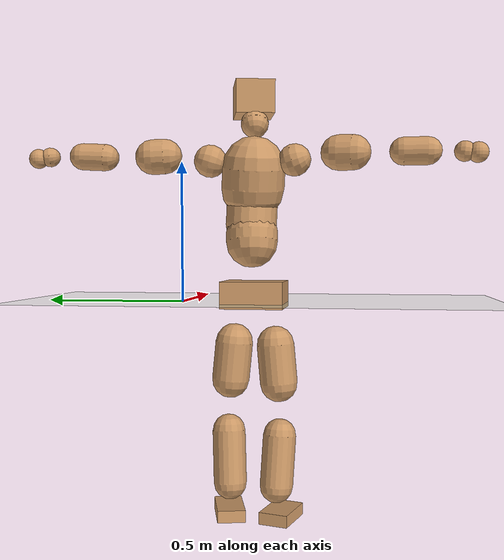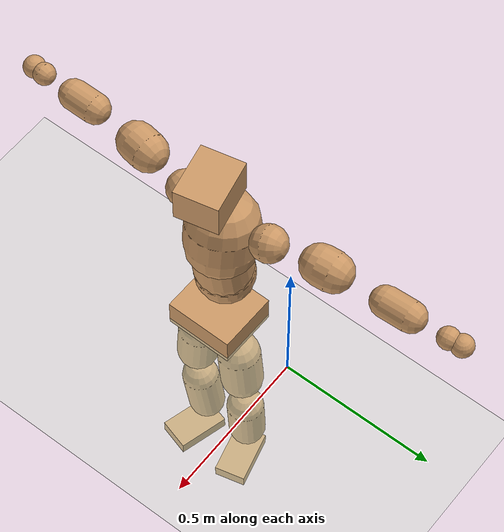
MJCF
<mujoco model="humanoid">
  <compiler coordinate="local" angle="radian"/>
  <default>
    <joint damping="0.0" armature="0.01" stiffness="0.0" limited="true"/>
    <geom conaffinity="1" condim="3" contype="7" margin="0.001" rgba="0.8 0.6 .4 1"/>
  </default>
  <asset>
    <texture type="skybox" builtin="gradient" rgb1=".4 .5 .6" rgb2="0 0 0" width="100" height="100"/>
    <texture builtin="flat" height="1278" mark="cross" markrgb="1 1 1" name="texgeom" random="0.01" rgb1="0.8 0.6 0.4" rgb2="0.8 0.6 0.4" type="cube" width="127"/>
    <texture builtin="checker" height="100" name="texplane" rgb1="0 0 0" rgb2="0.8 0.8 0.8" type="2d" width="100"/>
    <material name="MatPlane" reflectance="0.5" shininess="1" specular="1" texrepeat="60 60" texture="texplane"/>
    <material name="geom" texture="texgeom" texuniform="true"/>
  </asset>
  <worldbody>
    <light cutoff="100" diffuse="1 1 1" dir="-0 0 -1.3" directional="true" exponent="1" pos="0 0 1.3" specular=".1 .1 .1"/>
    <geom conaffinity="1" condim="3" name="floor" pos="0 0 0" rgba="0.8 0.9 0.8 1" size="100 100 .2" type="plane" material="MatPlane"/>
    <body name="Pelvis" pos="-0.0028 -0.2642 0.0362">
      <freejoint name="Pelvis"/>
      <geom type="box" contype="1" conaffinity="1" density="5359.374216" pos="-0.0113 0.0001 -0.0078" size="0.0967 0.1096 0.0474" quat="1.0000 0.0000 0.0000 -0.0064" name="Pelvis"/>
      <body name="L_Hip" pos="-0.0142 0.0633 -0.0821">
        <joint name="L_Hip_x" type="hinge" pos="0 0 0" axis="1 0 0" stiffness="1600" damping="160" armature="0.02" range="-180.0000 180.0000"/>
        <joint name="L_Hip_y" type="hinge" pos="0 0 0" axis="0 1 0" stiffness="1600" damping="160" armature="0.02" range="-180.0000 180.0000"/>
        <joint name="L_Hip_z" type="hinge" pos="0 0 0" axis="0 0 1" stiffness="1600" damping="160" armature="0.02" range="-180.0000 180.0000"/>
        <geom type="capsule" contype="1" conaffinity="1" density="2040.816327" size="0.0663" fromto="0.0005 0.0091 -0.0958 0.0012 0.0220 -0.2311" name="L_Hip"/>
        <body name="L_Knee" pos="0.0017 0.0311 -0.3269">
          <joint name="L_Knee_x" type="hinge" pos="0 0 0" axis="1 0 0" stiffness="1600" damping="160" armature="0.02" range="-180.0000 180.0000"/>
          <joint name="L_Knee_y" type="hinge" pos="0 0 0" axis="0 1 0" stiffness="1600" damping="160" armature="0.02" range="-180.0000 180.0000"/>
          <joint name="L_Knee_z" type="hinge" pos="0 0 0" axis="0 0 1" stiffness="1600" damping="160" armature="0.02" range="-180.0000 180.0000"/>
          <geom type="capsule" contype="1" conaffinity="1" density="1234.567901" size="0.0586" fromto="-0.0099 -0.0038 -0.0879 -0.0308 -0.0118 -0.2730" name="L_Knee"/>
          <body name="L_Ankle" pos="-0.0407 -0.0156 -0.361">
            <joint name="L_Ankle_x" type="hinge" pos="0 0 0" axis="1 0 0" stiffness="1600" damping="160" armature="0.02" range="-180.0000 180.0000"/>
            <joint name="L_Ankle_y" type="hinge" pos="0 0 0" axis="0 1 0" stiffness="1600" damping="160" armature="0.02" range="-180.0000 180.0000"/>
            <joint name="L_Ankle_z" type="hinge" pos="0 0 0" axis="0 0 1" stiffness="1600" damping="160" armature="0.02" range="-180.0000 180.0000"/>
            <geom type="box" contype="1" conaffinity="1" density="1000.000035" pos="0.0579 0.0142 -0.0265" size="0.0863 0.05 0.0216" quat="0.9928 0.0000 0.0000 0.1199" name="L_Ankle"/>
            <body name="L_Toe" pos="0.1157 0.0284 -0.0531">
              <joint name="L_Toe_x" type="hinge" pos="0 0 0" axis="1 0 0" stiffness="1000" damping="100" armature="0.02" range="-180.0000 180.0000"/>
              <joint name="L_Toe_y" type="hinge" pos="0 0 0" axis="0 1 0" stiffness="1000" damping="100" armature="0.02" range="-180.0000 180.0000"/>
              <joint name="L_Toe_z" type="hinge" pos="0 0 0" axis="0 0 1" stiffness="1000" damping="100" armature="0.02" range="-180.0000 180.0000"/>
              <geom type="box" contype="1" conaffinity="1" density="8379022.669763" pos="0.0000 0.0000 0.0264" size="0.001 0.0025 0.0011" quat="0.9920 0.0000 0.0000 0.1259" name="L_Toe"/>
            </body>
          </body>
        </body>
      </body>
      <body name="R_Hip" pos="-0.0088 -0.0665 -0.0896">
        <joint name="R_Hip_x" type="hinge" pos="0 0 0" axis="1 0 0" stiffness="1600" damping="160" armature="0.02" range="-180.0000 180.0000"/>
        <joint name="R_Hip_y" type="hinge" pos="0 0 0" axis="0 1 0" stiffness="1600" damping="160" armature="0.02" range="-180.0000 180.0000"/>
        <joint name="R_Hip_z" type="hinge" pos="0 0 0" axis="0 0 1" stiffness="1600" damping="160" armature="0.02" range="-180.0000 180.0000"/>
        <geom type="capsule" contype="1" conaffinity="1" density="2040.816327" size="0.0662" fromto="-0.0025 -0.0088 -0.0957 -0.0060 -0.0216 -0.2343" name="R_Hip"/>
        <body name="R_Knee" pos="-0.0084 -0.0304 -0.33">
          <joint name="R_Knee_x" type="hinge" pos="0 0 0" axis="1 0 0" stiffness="1600" damping="160" armature="0.02" range="-180.0000 180.0000"/>
          <joint name="R_Knee_y" type="hinge" pos="0 0 0" axis="0 1 0" stiffness="1600" damping="160" armature="0.02" range="-180.0000 180.0000"/>
          <joint name="R_Knee_z" type="hinge" pos="0 0 0" axis="0 0 1" stiffness="1600" damping="160" armature="0.02" range="-180.0000 180.0000"/>
          <geom type="capsule" contype="1" conaffinity="1" density="1234.567901" size="0.0584" fromto="-0.0091 0.0044 -0.0879 -0.0279 0.0135 -0.2684" name="R_Knee"/>
          <body name="R_Ankle" pos="-0.037 0.0179 -0.3562">
            <joint name="R_Ankle_x" type="hinge" pos="0 0 0" axis="1 0 0" stiffness="1600" damping="160" armature="0.02" range="-180.0000 180.0000"/>
            <joint name="R_Ankle_y" type="hinge" pos="0 0 0" axis="0 1 0" stiffness="1600" damping="160" armature="0.02" range="-180.0000 180.0000"/>
            <joint name="R_Ankle_z" type="hinge" pos="0 0 0" axis="0 0 1" stiffness="1600" damping="160" armature="0.02" range="-180.0000 180.0000"/>
            <geom type="box" contype="1" conaffinity="1" density="1000.000013" pos="0.0607 -0.0172 -0.0275" size="0.0837 0.0528 0.0216" quat="0.9905 0.0000 0.0000 -0.1372" name="R_Ankle"/>
            <body name="R_Toe" pos="0.1214 -0.0343 -0.0549">
              <joint name="R_Toe_x" type="hinge" pos="0 0 0" axis="1 0 0" stiffness="1000" damping="100" armature="0.02" range="-180.0000 180.0000"/>
              <joint name="R_Toe_y" type="hinge" pos="0 0 0" axis="0 1 0" stiffness="1000" damping="100" armature="0.02" range="-180.0000 180.0000"/>
              <joint name="R_Toe_z" type="hinge" pos="0 0 0" axis="0 0 1" stiffness="1000" damping="100" armature="0.02" range="-180.0000 180.0000"/>
              <geom type="box" contype="1" conaffinity="1" density="7558982.502113" pos="0.0000 0.0000 0.0281" size="0.0012 0.0026 0.0011" quat="0.9918 0.0000 0.0000 -0.1277" name="R_Toe"/>
            </body>
          </body>
        </body>
      </body>
      <body name="Torso" pos="-0.0451 0.0041 0.1247">
        <joint name="Torso_x" type="hinge" pos="0 0 0" axis="1 0 0" stiffness="2000" damping="200" armature="0.02" range="-180.0000 180.0000"/>
        <joint name="Torso_y" type="hinge" pos="0 0 0" axis="0 1 0" stiffness="2000" damping="200" armature="0.02" range="-180.0000 180.0000"/>
        <joint name="Torso_z" type="hinge" pos="0 0 0" axis="0 0 1" stiffness="2000" damping="200" armature="0.02" range="-180.0000 180.0000"/>
        <geom type="capsule" contype="1" conaffinity="1" density="2040.816327" size="0.0906" fromto="0.0159 0.0034 0.0891 0.0096 0.0020 0.0537" name="Torso"/>
        <body name="Spine" pos="0.0255 0.0054 0.1429">
          <joint name="Spine_x" type="hinge" pos="0 0 0" axis="1 0 0" stiffness="2000" damping="200" armature="0.02" range="-180.0000 180.0000"/>
          <joint name="Spine_y" type="hinge" pos="0 0 0" axis="0 1 0" stiffness="2000" damping="200" armature="0.02" range="-180.0000 180.0000"/>
          <joint name="Spine_z" type="hinge" pos="0 0 0" axis="0 0 1" stiffness="2000" damping="200" armature="0.02" range="-180.0000 180.0000"/>
          <geom type="capsule" contype="1" conaffinity="1" density="2040.816327" size="0.0895" fromto="0.0099 -0.0030 0.0889 -0.0034 0.0010 -0.0305" name="Spine"/>
          <body name="Chest" pos="0.0065 -0.002 0.0584">
            <joint name="Chest_x" type="hinge" pos="0 0 0" axis="1 0 0" stiffness="2000" damping="200" armature="0.02" range="-180.0000 180.0000"/>
            <joint name="Chest_y" type="hinge" pos="0 0 0" axis="0 1 0" stiffness="2000" damping="200" armature="0.02" range="-180.0000 180.0000"/>
            <joint name="Chest_z" type="hinge" pos="0 0 0" axis="0 0 1" stiffness="2000" damping="200" armature="0.02" range="-180.0000 180.0000"/>
            <geom type="capsule" contype="1" conaffinity="1" density="2040.816327" size="0.1107" fromto="-0.0207 -0.0068 0.1085 -0.0074 -0.0024 0.0388" name="Chest"/>
            <body name="Neck" pos="-0.0396 -0.0148 0.2166">
              <joint name="Neck_x" type="hinge" pos="0 0 0" axis="1 0 0" stiffness="1000" damping="100" armature="0.02" range="-180.0000 180.0000"/>
              <joint name="Neck_y" type="hinge" pos="0 0 0" axis="0 1 0" stiffness="1000" damping="100" armature="0.02" range="-180.0000 180.0000"/>
              <joint name="Neck_z" type="hinge" pos="0 0 0" axis="0 0 1" stiffness="1000" damping="100" armature="0.02" range="-180.0000 180.0000"/>
              <geom type="capsule" contype="1" conaffinity="1" density="1000" size="0.0486" fromto="0.0272 0.0051 0.0450 0.0282 0.0053 0.0467" name="Neck"/>
              <body name="Head" pos="0.0554 0.0104 0.0917">
                <joint name="Head_x" type="hinge" pos="0 0 0" axis="1 0 0" stiffness="1000" damping="100" armature="0.02" range="-180.0000 180.0000"/>
                <joint name="Head_y" type="hinge" pos="0 0 0" axis="0 1 0" stiffness="1000" damping="100" armature="0.02" range="-180.0000 180.0000"/>
                <joint name="Head_z" type="hinge" pos="0 0 0" axis="0 0 1" stiffness="1000" damping="100" armature="0.02" range="-180.0000 180.0000"/>
                <geom type="box" contype="1" conaffinity="1" density="2249.999981" pos="0.0287 0.0062 0.0469" size="0.0848 0.0681 0.0574" quat="0.9944 0.0000 0.0000 0.1060" name="Head"/>
              </body>
            </body>
            <body name="L_Thorax" pos="-0.0188 0.0767 0.1133">
              <joint name="L_Thorax_x" type="hinge" pos="0 0 0" axis="1 0 0" stiffness="1000" damping="100" armature="0.02" range="-180.0000 180.0000"/>
              <joint name="L_Thorax_y" type="hinge" pos="0 0 0" axis="0 1 0" stiffness="1000" damping="100" armature="0.02" range="-180.0000 180.0000"/>
              <joint name="L_Thorax_z" type="hinge" pos="0 0 0" axis="0 0 1" stiffness="1000" damping="100" armature="0.02" range="-180.0000 180.0000"/>
              <geom type="capsule" contype="1" conaffinity="1" density="1000" size="0.0565" fromto="-0.0140 0.0664 0.0199 -0.0143 0.0683 0.0205" name="L_Thorax"/>
              <body name="L_Shoulder" pos="-0.0283 0.1348 0.0404">
                <joint name="L_Shoulder_x" type="hinge" pos="0 0 0" axis="1 0 0" stiffness="1000" damping="100" armature="0.02" range="-720.0000 720.0000"/>
                <joint name="L_Shoulder_y" type="hinge" pos="0 0 0" axis="0 1 0" stiffness="1000" damping="100" armature="0.02" range="-720.0000 720.0000"/>
                <joint name="L_Shoulder_z" type="hinge" pos="0 0 0" axis="0 0 1" stiffness="1000" damping="100" armature="0.02" range="-720.0000 720.0000"/>
                <geom type="capsule" contype="1" conaffinity="1" density="1000" size="0.0606" fromto="-0.0099 0.0900 -0.0041 -0.0145 0.1321 -0.0061" name="L_Shoulder"/>
                <body name="L_Elbow" pos="-0.0244 0.2221 -0.0102">
                  <joint name="L_Elbow_x" type="hinge" pos="0 0 0" axis="1 0 0" stiffness="1000" damping="100" armature="0.02" range="-720.0000 720.0000"/>
                  <joint name="L_Elbow_y" type="hinge" pos="0 0 0" axis="0 1 0" stiffness="1000" damping="100" armature="0.02" range="-720.0000 720.0000"/>
                  <joint name="L_Elbow_z" type="hinge" pos="0 0 0" axis="0 0 1" stiffness="1000" damping="100" armature="0.02" range="-720.0000 720.0000"/>
                  <geom type="capsule" contype="1" conaffinity="1" density="1000" size="0.0466" fromto="-0.0012 0.0765 0.0040 -0.0026 0.1584 0.0083" name="L_Elbow"/>
                  <body name="L_Wrist" pos="-0.0038 0.2348 0.0122">
                    <joint name="L_Wrist_x" type="hinge" pos="0 0 0" axis="1 0 0" stiffness="600" damping="60" armature="0.02" range="-180.0000 180.0000"/>
                    <joint name="L_Wrist_y" type="hinge" pos="0 0 0" axis="0 1 0" stiffness="600" damping="60" armature="0.02" range="-180.0000 180.0000"/>
                    <joint name="L_Wrist_z" type="hinge" pos="0 0 0" axis="0 0 1" stiffness="600" damping="60" armature="0.02" range="-180.0000 180.0000"/>
                    <geom type="capsule" contype="1" conaffinity="1" density="1000" size="0.0334" fromto="-0.0068 0.0398 -0.0052 -0.0071 0.0417 -0.0054" name="L_Wrist"/>
                    <body name="L_Hand" pos="-0.0139 0.0815 -0.0106">
                      <joint name="L_Hand_x" type="hinge" pos="0 0 0" axis="1 0 0" stiffness="600" damping="60" armature="0.02" range="-180.0000 180.0000"/>
                      <joint name="L_Hand_y" type="hinge" pos="0 0 0" axis="0 1 0" stiffness="600" damping="60" armature="0.02" range="-180.0000 180.0000"/>
                      <joint name="L_Hand_z" type="hinge" pos="0 0 0" axis="0 0 1" stiffness="600" damping="60" armature="0.02" range="-180.0000 180.0000"/>
                      <geom type="sphere" contype="1" conaffinity="1" density="1000" size="0.0340" pos="0.0000 0.0000 0.0000" name="L_Hand"/>
                    </body>
                  </body>
                </body>
              </body>
            </body>
            <body name="R_Thorax" pos="-0.0258 -0.0896 0.1122">
              <joint name="R_Thorax_x" type="hinge" pos="0 0 0" axis="1 0 0" stiffness="1000" damping="100" armature="0.02" range="-180.0000 180.0000"/>
              <joint name="R_Thorax_y" type="hinge" pos="0 0 0" axis="0 1 0" stiffness="1000" damping="100" armature="0.02" range="-180.0000 180.0000"/>
              <joint name="R_Thorax_z" type="hinge" pos="0 0 0" axis="0 0 1" stiffness="1000" damping="100" armature="0.02" range="-180.0000 180.0000"/>
              <geom type="capsule" contype="1" conaffinity="1" density="1000" size="0.0558" fromto="-0.0077 -0.0603 0.0206 -0.0080 -0.0622 0.0212" name="R_Thorax"/>
              <body name="R_Shoulder" pos="-0.0157 -0.1226 0.0418">
                <joint name="R_Shoulder_x" type="hinge" pos="0 0 0" axis="1 0 0" stiffness="1000" damping="100" armature="0.02" range="-720.0000 720.0000"/>
                <joint name="R_Shoulder_y" type="hinge" pos="0 0 0" axis="0 1 0" stiffness="1000" damping="100" armature="0.02" range="-720.0000 720.0000"/>
                <joint name="R_Shoulder_z" type="hinge" pos="0 0 0" axis="0 0 1" stiffness="1000" damping="100" armature="0.02" range="-720.0000 720.0000"/>
                <geom type="capsule" contype="1" conaffinity="1" density="1000" size="0.0602" fromto="-0.0146 -0.0890 -0.0010 -0.0227 -0.1390 -0.0016" name="R_Shoulder"/>
                <body name="R_Elbow" pos="-0.0373 -0.228 -0.0027">
                  <joint name="R_Elbow_x" type="hinge" pos="0 0 0" axis="1 0 0" stiffness="1000" damping="100" armature="0.02" range="-720.0000 720.0000"/>
                  <joint name="R_Elbow_y" type="hinge" pos="0 0 0" axis="0 1 0" stiffness="1000" damping="100" armature="0.02" range="-720.0000 720.0000"/>
                  <joint name="R_Elbow_z" type="hinge" pos="0 0 0" axis="0 0 1" stiffness="1000" damping="100" armature="0.02" range="-720.0000 720.0000"/>
                  <geom type="capsule" contype="1" conaffinity="1" density="1000" size="0.047" fromto="-0.0012 -0.0770 0.0000 -0.0023 -0.1556 0.0000" name="R_Elbow"/>
                  <body name="R_Wrist" pos="-0.0035 -0.2326 0.0001">
                    <joint name="R_Wrist_x" type="hinge" pos="0 0 0" axis="1 0 0" stiffness="600" damping="60" armature="0.02" range="-180.0000 180.0000"/>
                    <joint name="R_Wrist_y" type="hinge" pos="0 0 0" axis="0 1 0" stiffness="600" damping="60" armature="0.02" range="-180.0000 180.0000"/>
                    <joint name="R_Wrist_z" type="hinge" pos="0 0 0" axis="0 0 1" stiffness="600" damping="60" armature="0.02" range="-180.0000 180.0000"/>
                    <geom type="capsule" contype="1" conaffinity="1" density="1000" size="0.0341" fromto="-0.0043 -0.0407 -0.0042 -0.0045 -0.0427 -0.0044" name="R_Wrist"/>
                    <body name="R_Hand" pos="-0.0089 -0.0834 -0.0086">
                      <joint name="R_Hand_x" type="hinge" pos="0 0 0" axis="1 0 0" stiffness="600" damping="60" armature="0.02" range="-180.0000 180.0000"/>
                      <joint name="R_Hand_y" type="hinge" pos="0 0 0" axis="0 1 0" stiffness="600" damping="60" armature="0.02" range="-180.0000 180.0000"/>
                      <joint name="R_Hand_z" type="hinge" pos="0 0 0" axis="0 0 1" stiffness="600" damping="60" armature="0.02" range="-180.0000 180.0000"/>
                      <geom type="sphere" contype="1" conaffinity="1" density="1000" size="0.0344" pos="0.0000 0.0000 0.0000" name="R_Hand"/>
                    </body>
                  </body>
                </body>
              </body>
            </body>
          </body>
        </body>
      </body>
    </body>
  </worldbody>
  <actuator>
    <motor name="L_Hip_x" joint="L_Hip_x" gear="500"/>
    <motor name="L_Hip_y" joint="L_Hip_y" gear="500"/>
    <motor name="L_Hip_z" joint="L_Hip_z" gear="500"/>
    <motor name="L_Knee_x" joint="L_Knee_x" gear="500"/>
    <motor name="L_Knee_y" joint="L_Knee_y" gear="500"/>
    <motor name="L_Knee_z" joint="L_Knee_z" gear="500"/>
    <motor name="L_Ankle_x" joint="L_Ankle_x" gear="500"/>
    <motor name="L_Ankle_y" joint="L_Ankle_y" gear="500"/>
    <motor name="L_Ankle_z" joint="L_Ankle_z" gear="500"/>
    <motor name="L_Toe_x" joint="L_Toe_x" gear="500"/>
    <motor name="L_Toe_y" joint="L_Toe_y" gear="500"/>
    <motor name="L_Toe_z" joint="L_Toe_z" gear="500"/>
    <motor name="R_Hip_x" joint="R_Hip_x" gear="500"/>
    <motor name="R_Hip_y" joint="R_Hip_y" gear="500"/>
    <motor name="R_Hip_z" joint="R_Hip_z" gear="500"/>
    <motor name="R_Knee_x" joint="R_Knee_x" gear="500"/>
    <motor name="R_Knee_y" joint="R_Knee_y" gear="500"/>
    <motor name="R_Knee_z" joint="R_Knee_z" gear="500"/>
    <motor name="R_Ankle_x" joint="R_Ankle_x" gear="500"/>
    <motor name="R_Ankle_y" joint="R_Ankle_y" gear="500"/>
    <motor name="R_Ankle_z" joint="R_Ankle_z" gear="500"/>
    <motor name="R_Toe_x" joint="R_Toe_x" gear="500"/>
    <motor name="R_Toe_y" joint="R_Toe_y" gear="500"/>
    <motor name="R_Toe_z" joint="R_Toe_z" gear="500"/>
    <motor name="Torso_x" joint="Torso_x" gear="500"/>
    <motor name="Torso_y" joint="Torso_y" gear="500"/>
    <motor name="Torso_z" joint="Torso_z" gear="500"/>
    <motor name="Spine_x" joint="Spine_x" gear="500"/>
    <motor name="Spine_y" joint="Spine_y" gear="500"/>
    <motor name="Spine_z" joint="Spine_z" gear="500"/>
    <motor name="Chest_x" joint="Chest_x" gear="500"/>
    <motor name="Chest_y" joint="Chest_y" gear="500"/>
    <motor name="Chest_z" joint="Chest_z" gear="500"/>
    <motor name="Neck_x" joint="Neck_x" gear="500"/>
    <motor name="Neck_y" joint="Neck_y" gear="500"/>
    <motor name="Neck_z" joint="Neck_z" gear="500"/>
    <motor name="Head_x" joint="Head_x" gear="500"/>
    <motor name="Head_y" joint="Head_y" gear="500"/>
    <motor name="Head_z" joint="Head_z" gear="500"/>
    <motor name="L_Thorax_x" joint="L_Thorax_x" gear="500"/>
    <motor name="L_Thorax_y" joint="L_Thorax_y" gear="500"/>
    <motor name="L_Thorax_z" joint="L_Thorax_z" gear="500"/>
    <motor name="L_Shoulder_x" joint="L_Shoulder_x" gear="500"/>
    <motor name="L_Shoulder_y" joint="L_Shoulder_y" gear="500"/>
    <motor name="L_Shoulder_z" joint="L_Shoulder_z" gear="500"/>
    <motor name="L_Elbow_x" joint="L_Elbow_x" gear="500"/>
    <motor name="L_Elbow_y" joint="L_Elbow_y" gear="500"/>
    <motor name="L_Elbow_z" joint="L_Elbow_z" gear="500"/>
    <motor name="L_Wrist_x" joint="L_Wrist_x" gear="500"/>
    <motor name="L_Wrist_y" joint="L_Wrist_y" gear="500"/>
    <motor name="L_Wrist_z" joint="L_Wrist_z" gear="500"/>
    <motor name="L_Hand_x" joint="L_Hand_x" gear="500"/>
    <motor name="L_Hand_y" joint="L_Hand_y" gear="500"/>
    <motor name="L_Hand_z" joint="L_Hand_z" gear="500"/>
    <motor name="R_Thorax_x" joint="R_Thorax_x" gear="500"/>
    <motor name="R_Thorax_y" joint="R_Thorax_y" gear="500"/>
    <motor name="R_Thorax_z" joint="R_Thorax_z" gear="500"/>
    <motor name="R_Shoulder_x" joint="R_Shoulder_x" gear="500"/>
    <motor name="R_Shoulder_y" joint="R_Shoulder_y" gear="500"/>
    <motor name="R_Shoulder_z" joint="R_Shoulder_z" gear="500"/>
    <motor name="R_Elbow_x" joint="R_Elbow_x" gear="500"/>
    <motor name="R_Elbow_y" joint="R_Elbow_y" gear="500"/>
    <motor name="R_Elbow_z" joint="R_Elbow_z" gear="500"/>
    <motor name="R_Wrist_x" joint="R_Wrist_x" gear="500"/>
    <motor name="R_Wrist_y" joint="R_Wrist_y" gear="500"/>
    <motor name="R_Wrist_z" joint="R_Wrist_z" gear="500"/>
    <motor name="R_Hand_x" joint="R_Hand_x" gear="500"/>
    <motor name="R_Hand_y" joint="R_Hand_y" gear="500"/>
    <motor name="R_Hand_z" joint="R_Hand_z" gear="500"/>
  </actuator>
  <contact>
    <exclude body1="Torso" body2="Chest"/>
    <exclude body1="Head" body2="Chest"/>
    <exclude body1="R_Knee" body2="R_Toe"/>
    <exclude body1="R_Knee" body2="L_Ankle"/>
    <exclude body1="R_Knee" body2="L_Toe"/>
    <exclude body1="L_Knee" body2="L_Toe"/>
    <exclude body1="L_Knee" body2="R_Ankle"/>
    <exclude body1="L_Knee" body2="R_Toe"/>
    <exclude body1="L_Shoulder" body2="Chest"/>
    <exclude body1="R_Shoulder" body2="Chest"/>
  </contact>
  <sensor/>
  <size njmax="700" nconmax="700"/>
</mujoco>
